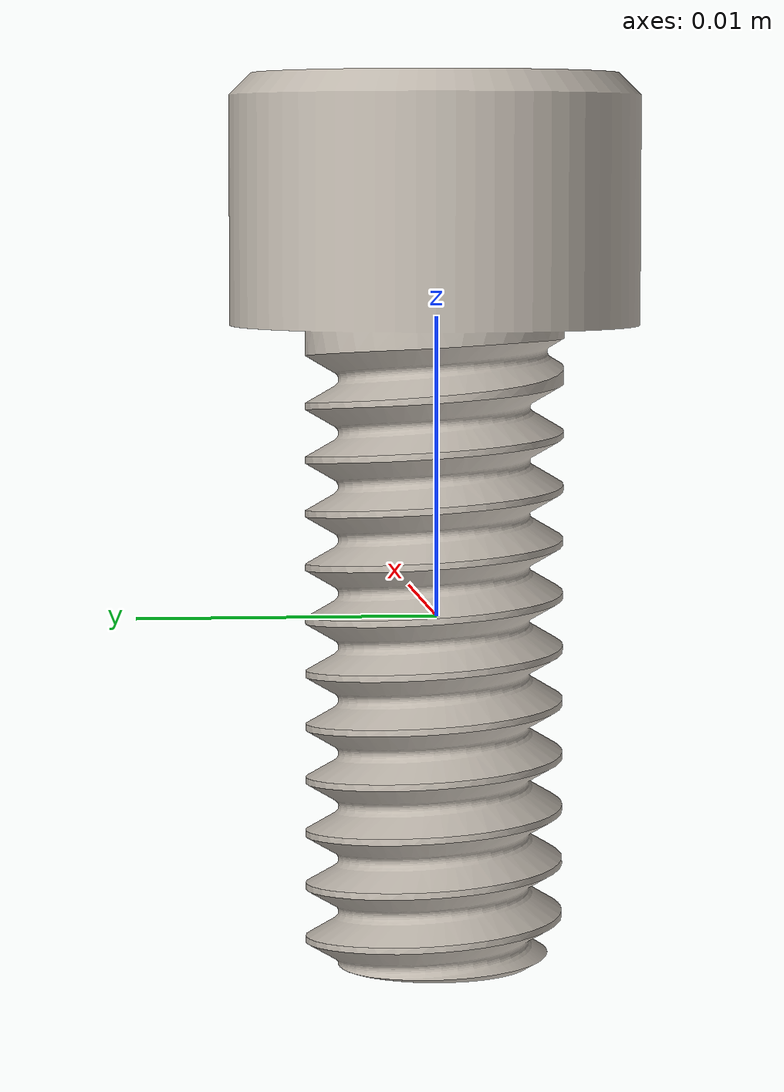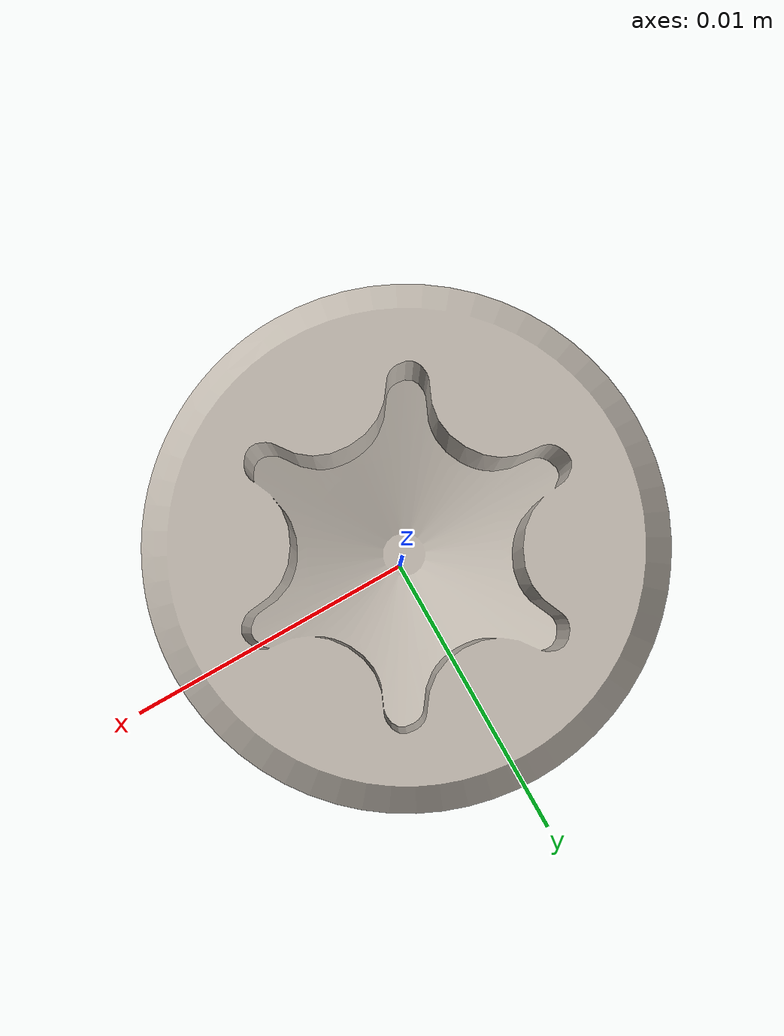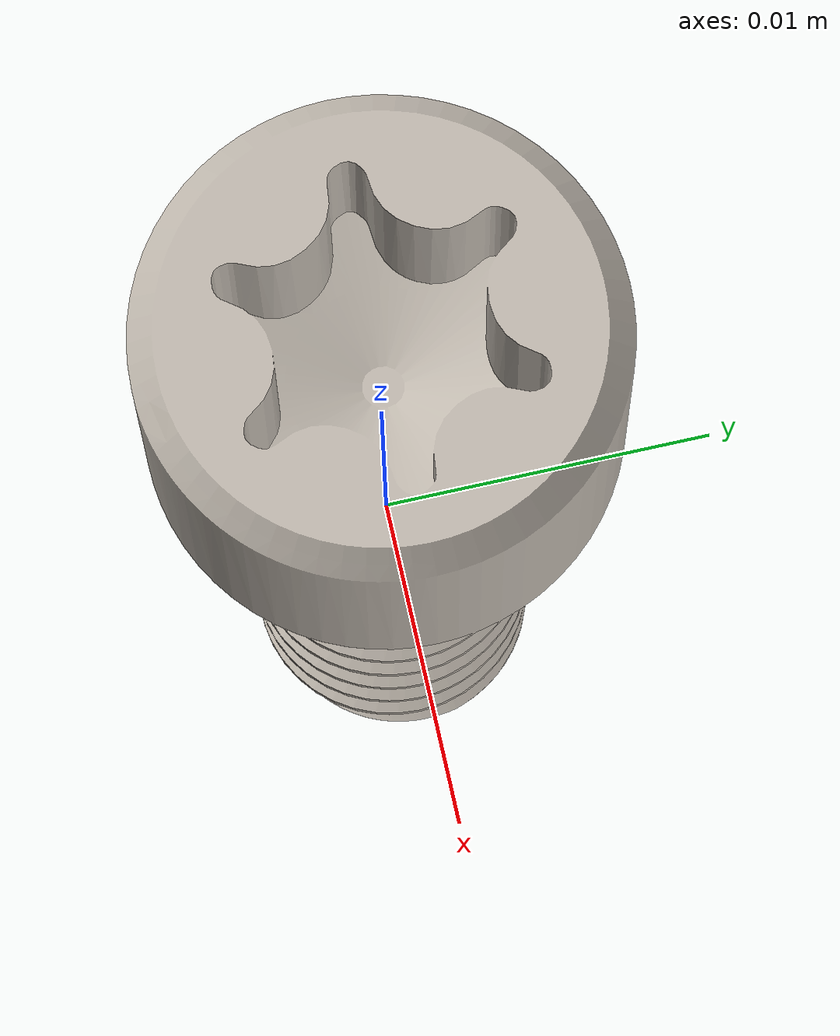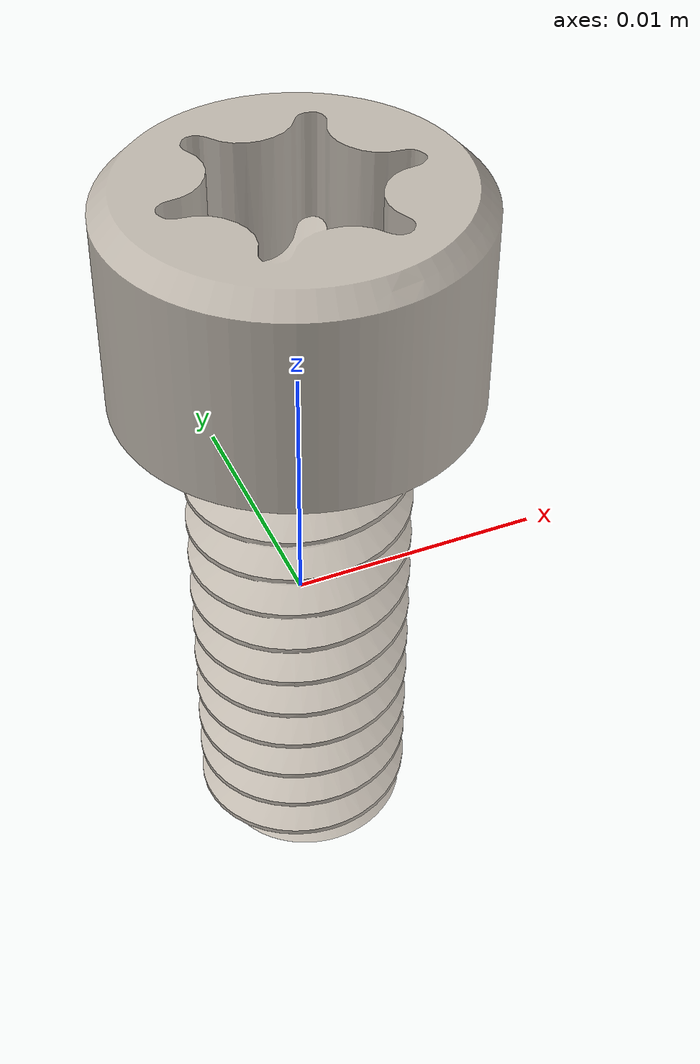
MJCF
<?xml version="1.0" encoding="UTF-8"?>
<mujoco model="sockethead_capscrew_torx">
  <asset>
    <texture type="2d" file="textures/metal.png" name="metal_tex"/>
    <material name="metal_mat" texture="metal_tex" specular="0.9" shininess="0.7" reflectance="0.25"/>
    <mesh name="sockethead_capscrew_torx_mesh" file="meshes/sockethead_capscrew_torx.stl"/>
  </asset>
  <worldbody>
    <body name="sockethead_capscrew_torx" pos="0 0 0">
      <freejoint name="sockethead_capscrew_torx_joint"/>
      <geom name="sockethead_capscrew_torx_visual" type="mesh" mesh="sockethead_capscrew_torx_mesh"
            material="metal_mat" group="1" contype="0" conaffinity="0"/>
      <geom name="sockethead_capscrew_torx_col" type="cylinder" group="3"
            size="0.00687712 0.014892"
            pos="0 0 0.0031406" quat="1 0 0 0"
            mass="0.001" friction="1.0 0.05 0.001" condim="4"/>
    </body>
  </worldbody>
</mujoco>
